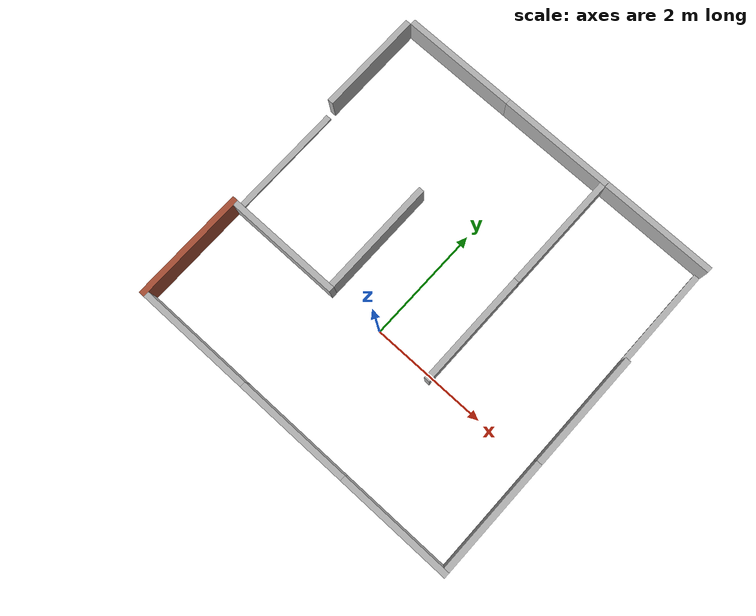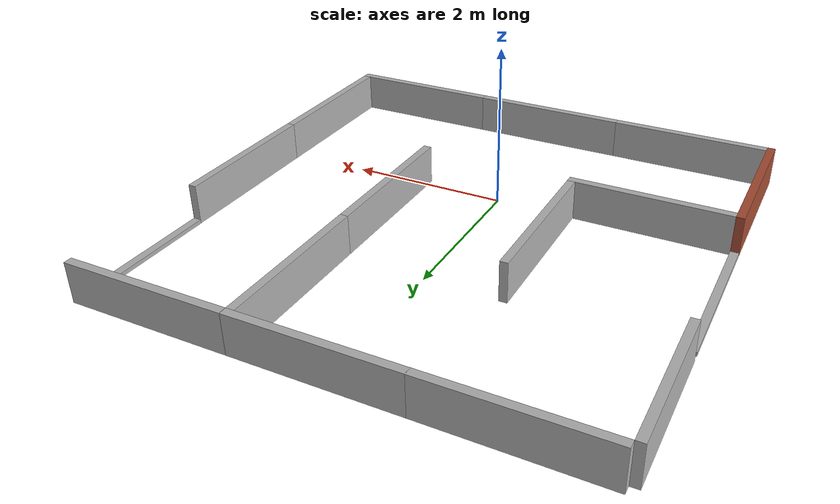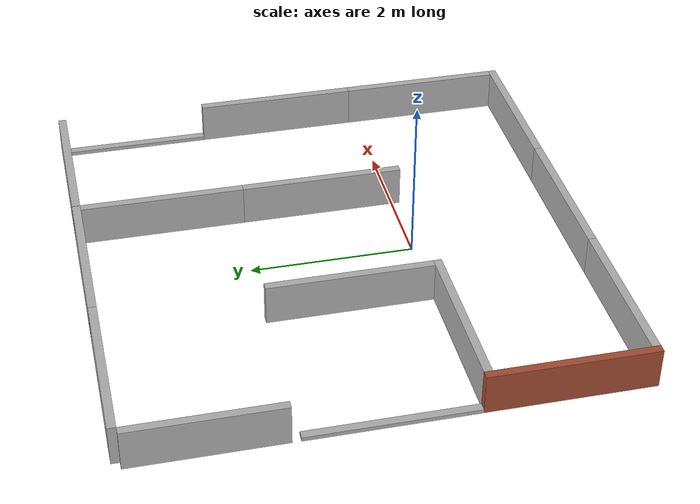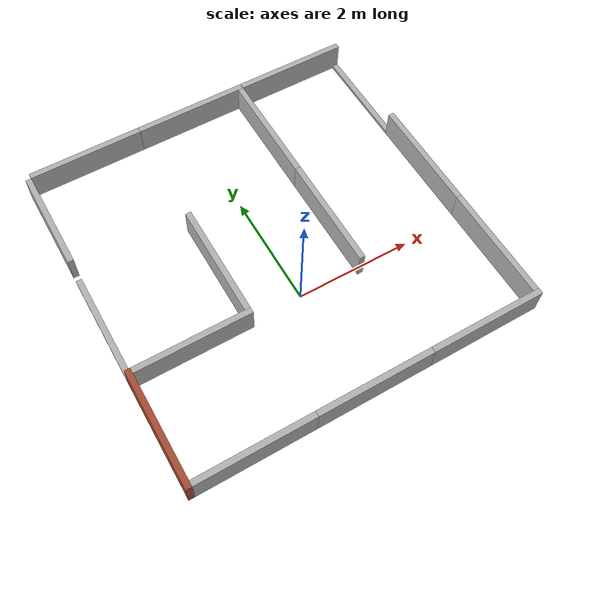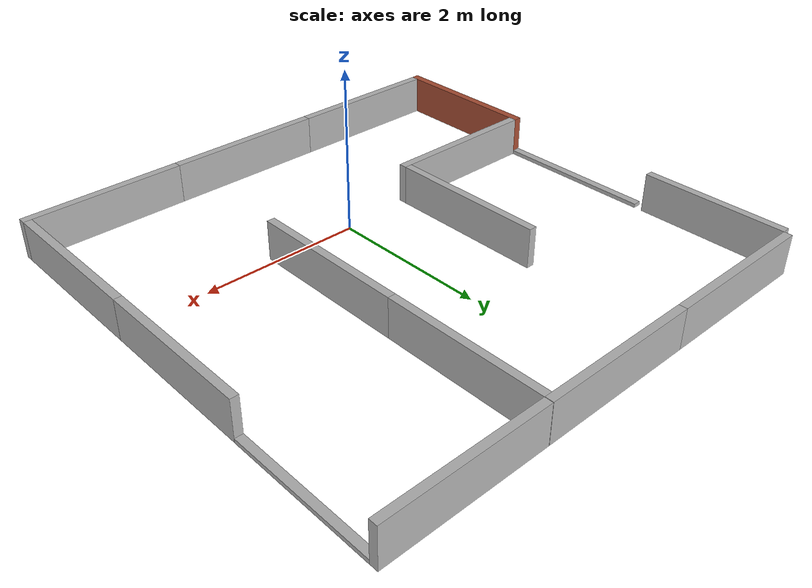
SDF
<?xml version="1.0" ?>
<sdf version="1.7">

    <world name="Empty_world">
        <physics name="1ms" type="ignored">
            <max_step_size>0.001</max_step_size>
            <real_time_factor>1.0</real_time_factor>
        </physics>
        <plugin
            filename="libignition-gazebo-physics-system.so"
            name="ignition::gazebo::systems::Physics">
        </plugin>
        <plugin
            filename="libignition-gazebo-user-commands-system.so"
            name="ignition::gazebo::systems::UserCommands">
        </plugin>
        <plugin
            filename="libignition-gazebo-scene-broadcaster-system.so"
            name="ignition::gazebo::systems::SceneBroadcaster">
        </plugin>

        <gui fullscreen="0">

            <!-- 3D scene -->
            <plugin filename="GzScene3D" name="3D View">
                <ignition-gui>
                <title>3D View</title>
                <property type="bool" key="showTitleBar">false</property>
                <property type="string" key="state">docked</property>
                </ignition-gui>

                <engine>ogre2</engine>
                <scene>scene</scene>
                <ambient_light>0.4 0.4 0.4</ambient_light>
                <background_color>0.8 0.8 0.8</background_color>
            </plugin>

            <!-- World control -->
            <plugin filename="WorldControl" name="World control">
                <ignition-gui>
                <title>World control</title>
                <property type="bool" key="showTitleBar">false</property>
                <property type="bool" key="resizable">false</property>
                <property type="double" key="height">72</property>
                <property type="double" key="width">121</property>
                <property type="double" key="z">1</property>

                <property type="string" key="state">floating</property>
                <anchors target="3D View">
                    <line own="left" target="left"/>
                    <line own="bottom" target="bottom"/>
                </anchors>
                </ignition-gui>

                <play_pause>true</play_pause>
                <step>true</step>
                <start_paused>true</start_paused>
                <service>/world/Moving_robot/control</service>
                <stats_topic>/world/Moving_robot/stats</stats_topic>
            </plugin>

            <!-- World statistics -->
            <plugin filename="WorldStats" name="World stats">
                <ignition-gui>
                <title>World stats</title>
                <property type="bool" key="showTitleBar">false</property>
                <property type="bool" key="resizable">false</property>
                <property type="double" key="height">110</property>
                <property type="double" key="width">290</property>
                <property type="double" key="z">1</property>

                <property type="string" key="state">floating</property>
                <anchors target="3D View">
                    <line own="right" target="right"/>
                    <line own="bottom" target="bottom"/>
                </anchors>
                </ignition-gui>

                <sim_time>true</sim_time>
                <real_time>true</real_time>
                <real_time_factor>true</real_time_factor>
                <iterations>true</iterations>
                <topic>/world/Moving_robot/stats</topic>

            </plugin>

            <!-- Entity tree -->
            <plugin filename="EntityTree" name="Entity tree">
            </plugin>

            <!-- Entity tree -->
            <plugin filename="ComponentInspector" name="Component inspector">
            </plugin>

            <!-- KeyPublisher plugin-->
            <plugin filename="KeyPublisher" name="Key publisher"/>

            <plugin filename="ImageDisplay" name="Image display"/>

        </gui>

        <model name='minimaze'>
            <link name='link_0'>
                <inertial>
                    <mass>1</mass>
                    <inertia>
                        <ixx>0.166667</ixx>
                        <ixy>0</ixy>
                        <ixz>0</ixz>
                        <iyy>0.166667</iyy>
                        <iyz>0</iyz>
                        <izz>0.166667</izz>
                    </inertia>
                    <pose>0 0 0 0 -0 0</pose>
                </inertial>
                <pose>-2.95321 -1.925 0 0 -0 0</pose>
                <gravity>1</gravity>
                <self_collide>0</self_collide>
                <kinematic>0</kinematic>
                <enable_wind>0</enable_wind>
                <visual name='visual'>
                    <pose>0 0 0 0 -0 0</pose>
                    <geometry>
                        <mesh>
                            <uri>file://src/robotont_gazebo/meshes/bricks_test.dae</uri>
                            <scale>1 1 1</scale>
                        </mesh>
                    </geometry>
                    <material>
                        <lighting>1</lighting>
                        <script>
                        <uri>file://src/robotont_gazebo/media/materials/scripts/WhiteBricks.material</uri>
                        <name>RoboTont/WhiteBricks</name>
                        </script>
                        <shader type='vertex'>
                        <normal_map>__default__</normal_map>
                        </shader>
                        <ambient>0.3 0.3 0.3 1</ambient>
                        <diffuse>0.7 0.7 0.7 1</diffuse>
                        <specular>0.01 0.01 0.01 1</specular>
                        <emissive>0.5 0.5 0.5 1</emissive>
                    </material>
                    <transparency>0</transparency>
                    <cast_shadows>1</cast_shadows>
                </visual>
                <collision name='collision'>
                    <laser_retro>0</laser_retro>
                    <max_contacts>10</max_contacts>
                    <pose>0 0 0 0 -0 0</pose>
                    <geometry>
                        <mesh>
                        <uri>file://src/robotont_gazebo/meshes/bricks_test.dae</uri>
                        <scale>1 1 1</scale>
                        </mesh>
                    </geometry>
                    <surface>
                        <friction>
                        <ode>
                            <mu>1</mu>
                            <mu2>1</mu2>
                            <fdir1>0 0 0</fdir1>
                            <slip1>0</slip1>
                            <slip2>0</slip2>
                        </ode>
                        <torsional>
                            <coefficient>1</coefficient>
                            <patch_radius>0</patch_radius>
                            <surface_radius>0</surface_radius>
                            <use_patch_radius>1</use_patch_radius>
                            <ode>
                            <slip>0</slip>
                            </ode>
                        </torsional>
                        </friction>
                        <bounce>
                        <restitution_coefficient>0</restitution_coefficient>
                        <threshold>1e+06</threshold>
                        </bounce>
                        <contact>
                        <collide_without_contact>0</collide_without_contact>
                        <collide_without_contact_bitmask>1</collide_without_contact_bitmask>
                        <collide_bitmask>1</collide_bitmask>
                        <ode>
                            <soft_cfm>0</soft_cfm>
                            <soft_erp>0.2</soft_erp>
                            <kp>1e+13</kp>
                            <kd>1</kd>
                            <max_vel>0.01</max_vel>
                            <min_depth>0</min_depth>
                        </ode>
                        <bullet>
                            <split_impulse>1</split_impulse>
                            <split_impulse_penetration_threshold>-0.01</split_impulse_penetration_threshold>
                            <soft_cfm>0</soft_cfm>
                            <soft_erp>0.2</soft_erp>
                            <kp>1e+13</kp>
                            <kd>1</kd>
                        </bullet>
                        </contact>
                    </surface>
                </collision>
            </link>
            <link name='link_0_0'>
                <inertial>
                <mass>0.00194483</mass>
                <inertia>
                    <ixx>0.00047544</ixx>
                    <ixy>0</ixy>
                    <ixz>0</ixz>
                    <iyy>4.8e-07</iyy>
                    <iyz>0</iyz>
                    <izz>0.00047572</izz>
                </inertia>
                <pose>0 0 0 0 -0 0</pose>
                </inertial>
                <pose>-2.95321 0.074599 -0.227011 -3.8e-05 -1e-05 0</pose>
                <gravity>1</gravity>
                <self_collide>0</self_collide>
                <kinematic>0</kinematic>
                <enable_wind>0</enable_wind>
                <visual name='visual'>
                <pose>0 0 0 0 -0 0</pose>
                <geometry>
                    <box>
                    <size>0.1 2 0.05</size>
                    </box>
                </geometry>
                <material>
                    <lighting>1</lighting>
                    <shader type='vertex'>
                    <normal_map>__default__</normal_map>
                    </shader>
                    <ambient>0.3 0.3 0.3 1</ambient>
                    <diffuse>0.7 0.7 0.7 1</diffuse>
                    <specular>0.01 0.01 0.01 1</specular>
                    <emissive>0.4 0.4 0.4 1</emissive>
                </material>
                <transparency>0</transparency>
                <cast_shadows>1</cast_shadows>
                </visual>
                <collision name='collision'>
                <laser_retro>0</laser_retro>
                <max_contacts>10</max_contacts>
                <pose>0 0 0 0 -0 0</pose>
                <geometry>
                    <box>
                    <size>0.099999 2 0.05</size>
                    </box>
                </geometry>
                <surface>
                    <friction>
                    <ode>
                        <mu>1</mu>
                        <mu2>1</mu2>
                        <fdir1>0 0 0</fdir1>
                        <slip1>0</slip1>
                        <slip2>0</slip2>
                    </ode>
                    <torsional>
                        <coefficient>1</coefficient>
                        <patch_radius>0</patch_radius>
                        <surface_radius>0</surface_radius>
                        <use_patch_radius>1</use_patch_radius>
                        <ode>
                        <slip>0</slip>
                        </ode>
                    </torsional>
                    </friction>
                    <bounce>
                    <restitution_coefficient>0</restitution_coefficient>
                    <threshold>1e+06</threshold>
                    </bounce>
                    <contact>
                    <collide_without_contact>0</collide_without_contact>
                    <collide_without_contact_bitmask>1</collide_without_contact_bitmask>
                    <collide_bitmask>1</collide_bitmask>
                    <ode>
                        <soft_cfm>0</soft_cfm>
                        <soft_erp>0.2</soft_erp>
                        <kp>1e+13</kp>
                        <kd>1</kd>
                        <max_vel>0.01</max_vel>
                        <min_depth>0</min_depth>
                    </ode>
                    <bullet>
                        <split_impulse>1</split_impulse>
                        <split_impulse_penetration_threshold>-0.01</split_impulse_penetration_threshold>
                        <soft_cfm>0</soft_cfm>
                        <soft_erp>0.2</soft_erp>
                        <kp>1e+13</kp>
                        <kd>1</kd>
                    </bullet>
                    </contact>
                </surface>
                </collision>
            </link>
            <link name='link_0_0_clone'>
                <inertial>
                <mass>0.00177554</mass>
                <inertia>
                    <ixx>0.00049366</ixx>
                    <ixy>0</ixy>
                    <ixz>0</ixz>
                    <iyy>3.8e-07</iyy>
                    <iyz>0</iyz>
                    <izz>0.00049331</izz>
                </inertia>
                <pose>0 0 0 0 -0 0</pose>
                </inertial>
                <pose>3.046790 2.07373 -0.227011 -7.6e-05 -2e-05 -0</pose>
                <gravity>1</gravity>
                <self_collide>0</self_collide>
                <kinematic>0</kinematic>
                <enable_wind>0</enable_wind>
                <visual name='visual_0'>
                <pose>0 0 0 0 -0 0</pose>
                <geometry>
                    <box>
                    <size>0.1 1.801 0.05</size>
                    </box>
                </geometry>
                <material>
                    <lighting>1</lighting>
                    <shader type='vertex'>
                    <normal_map>__default__</normal_map>
                    </shader>
                    <ambient>0.3 0.3 0.3 1</ambient>
                    <diffuse>0.7 0.7 0.7 1</diffuse>
                    <specular>0.01 0.01 0.01 1</specular>
                    <emissive>0.4 0.4 0.4 1</emissive>
                </material>
                <transparency>0</transparency>
                <cast_shadows>1</cast_shadows>
                </visual>
                <collision name='collision'>
                <laser_retro>0</laser_retro>
                <max_contacts>10</max_contacts>
                <pose>0 0 0 0 -0 0</pose>
                <geometry>
                    <box>
                    <size>0.1 1.801 0.05</size>
                    </box>
                </geometry>
                <surface>
                    <friction>
                    <ode>
                        <mu>1</mu>
                        <mu2>1</mu2>
                        <fdir1>0 0 0</fdir1>
                        <slip1>0</slip1>
                        <slip2>0</slip2>
                        </ode>
                    <torsional>
                        <coefficient>1</coefficient>
                        <patch_radius>0</patch_radius>
                        <surface_radius>0</surface_radius>
                        <use_patch_radius>1</use_patch_radius>
                        <ode>
                        <slip>0</slip>
                        </ode>
                    </torsional>
                    </friction>
                    <bounce>
                    <restitution_coefficient>0</restitution_coefficient>
                    <threshold>1e+06</threshold>
                    </bounce>
                    <contact>
                    <collide_without_contact>0</collide_without_contact>
                    <collide_without_contact_bitmask>1</collide_without_contact_bitmask>
                    <collide_bitmask>1</collide_bitmask>
                    <ode>
                        <soft_cfm>0</soft_cfm>
                        <soft_erp>0.2</soft_erp>
                        <kp>1e+13</kp>
                        <kd>1</kd>
                        <max_vel>0.01</max_vel>
                        <min_depth>0</min_depth>
                    </ode>
                    <bullet>
                        <split_impulse>1</split_impulse>
                        <split_impulse_penetration_threshold>-0.01</split_impulse_penetration_threshold>
                        <soft_cfm>0</soft_cfm>
                        <soft_erp>0.2</soft_erp>
                        <kp>1e+13</kp>
                        <kd>1</kd>
                    </bullet>
                    </contact>
                </surface>
                </collision>
            </link>
            <link name='link_0_clone'>
                <inertial>
                <mass>1</mass>
                <inertia>
                    <ixx>0.166667</ixx>
                    <ixy>0</ixy>
                    <ixz>0</ixz>
                    <iyy>0.166667</iyy>
                    <iyz>0</iyz>
                    <izz>0.166667</izz>
                </inertia>
                <pose>0 0 0 0 -0 0</pose>
                </inertial>
                <pose>-2.95321 2.075 0 0 -0 0</pose>
                <gravity>1</gravity>
                <self_collide>0</self_collide>
                <kinematic>0</kinematic>
                <enable_wind>0</enable_wind>
                <visual name='visual'>
                <pose>0 0 0 0 -0 0</pose>
                <geometry>
                    <box>
                    <size>0.1 1.801 0.5</size>
                    </box>
                </geometry>
                <material>
                    <lighting>1</lighting>
                    <shader type='vertex'>
                    <normal_map>__default__</normal_map>
                    </shader>
                    <ambient>0.3 0.3 0.3 1</ambient>
                    <diffuse>0.7 0.7 0.7 1</diffuse>
                    <specular>0.01 0.01 0.01 1</specular>
                    <emissive>0.5 0.5 0.5 1</emissive>
                </material>
                <transparency>0</transparency>
                <cast_shadows>1</cast_shadows>
                </visual>
                <collision name='collision'>
                <laser_retro>0</laser_retro>
                <max_contacts>10</max_contacts>
                <pose>0 0 0 0 -0 0</pose>
                <geometry>
                    <mesh>
                    <uri>file://src/robotont_gazebo/meshes/bricks_test.dae</uri>
                    <scale>1 1 1</scale>
                    </mesh>
                </geometry>
                <surface>
                    <friction>
                    <ode>
                        <mu>1</mu>
                        <mu2>1</mu2>
                        <fdir1>0 0 0</fdir1>
                        <slip1>0</slip1>
                        <slip2>0</slip2>
                    </ode>
                    <torsional>
                        <coefficient>1</coefficient>
                        <patch_radius>0</patch_radius>
                        <surface_radius>0</surface_radius>
                        <use_patch_radius>1</use_patch_radius>
                        <ode>
                        <slip>0</slip>
                        </ode>
                    </torsional>
                    </friction>
                    <bounce>
                    <restitution_coefficient>0</restitution_coefficient>
                    <threshold>1e+06</threshold>
                    </bounce>
                    <contact>
                    <collide_without_contact>0</collide_without_contact>
                    <collide_without_contact_bitmask>1</collide_without_contact_bitmask>
                    <collide_bitmask>1</collide_bitmask>
                    <ode>
                        <soft_cfm>0</soft_cfm>
                        <soft_erp>0.2</soft_erp>
                        <kp>1e+13</kp>
                        <kd>1</kd>
                        <max_vel>0.01</max_vel>
                        <min_depth>0</min_depth>
                    </ode>
                    <bullet>
                        <split_impulse>1</split_impulse>
                        <split_impulse_penetration_threshold>-0.01</split_impulse_penetration_threshold>
                        <soft_cfm>0</soft_cfm>
                        <soft_erp>0.2</soft_erp>
                        <kp>1e+13</kp>
                        <kd>1</kd>
                    </bullet>
                    </contact>
                </surface>
                </collision>
            </link>
            <link name='link_0_clone_0'>
                <inertial>
                <mass>1</mass>
                <inertia>
                    <ixx>0.166667</ixx>
                    <ixy>0</ixy>
                    <ixz>0</ixz>
                    <iyy>0.166667</iyy>
                    <iyz>0</iyz>
                    <izz>0.166667</izz>
                </inertia>
                <pose>0 0 0 0 -0 0</pose>
                </inertial>
                <pose>3.04679 -1.825 -0 0 -0 0</pose>
                <gravity>1</gravity>
                <self_collide>0</self_collide>
                <kinematic>0</kinematic>
                <enable_wind>0</enable_wind>
                <visual name='visual'>
                <pose>0 0 0 0 -0 0</pose>
                <geometry>
                    <mesh>
                    <uri>file://src/robotont_gazebo/meshes/bricks_test.dae</uri>
                    <scale>1 1 1</scale>
                    </mesh>
                </geometry>
                <material>
                    <lighting>1</lighting>
                    <shader type='vertex'>
                    <normal_map>__default__</normal_map>
                    </shader>
                    <ambient>0.3 0.3 0.3 1</ambient>
                    <diffuse>0.7 0.7 0.7 1</diffuse>
                    <specular>0.01 0.01 0.01 1</specular>
                    <emissive>0.5 0.5 0.5 1</emissive>
                </material>
                <transparency>0</transparency>
                <cast_shadows>1</cast_shadows>
                </visual>
                <collision name='collision'>
                <laser_retro>0</laser_retro>
                <max_contacts>10</max_contacts>
                <pose>0 0 0 0 -0 0</pose>
                <geometry>
                    <mesh>
                    <uri>file://src/robotont_gazebo/meshes/bricks_test.dae</uri>
                    <scale>1 1 1</scale>
                    </mesh>
                </geometry>
                <surface>
                    <friction>
                    <ode>
                        <mu>1</mu>
                        <mu2>1</mu2>
                        <fdir1>0 0 0</fdir1>
                        <slip1>0</slip1>
                        <slip2>0</slip2>
                    </ode>
                    <torsional>
                        <coefficient>1</coefficient>
                        <patch_radius>0</patch_radius>
                        <surface_radius>0</surface_radius>
                        <use_patch_radius>1</use_patch_radius>
                        <ode>
                        <slip>0</slip>
                        </ode>
                    </torsional>
                    </friction>
                    <bounce>
                    <restitution_coefficient>0</restitution_coefficient>
                    <threshold>1e+06</threshold>
                    </bounce>
                    <contact>
                    <collide_without_contact>0</collide_without_contact>
                    <collide_without_contact_bitmask>1</collide_without_contact_bitmask>
                    <collide_bitmask>1</collide_bitmask>
                    <ode>
                        <soft_cfm>0</soft_cfm>
                        <soft_erp>0.2</soft_erp>
                        <kp>1e+13</kp>
                        <kd>1</kd>
                        <max_vel>0.01</max_vel>
                        <min_depth>0</min_depth>
                    </ode>
                    <bullet>
                        <split_impulse>1</split_impulse>
                        <split_impulse_penetration_threshold>-0.01</split_impulse_penetration_threshold>
                        <soft_cfm>0</soft_cfm>
                        <soft_erp>0.2</soft_erp>
                        <kp>1e+13</kp>
                        <kd>1</kd>
                    </bullet>
                    </contact>
                </surface>
                </collision>
            </link>
            <link name='link_0_clone_1'>
                <inertial>
                <mass>1</mass>
                <inertia>
                    <ixx>0.166667</ixx>
                    <ixy>0</ixy>
                    <ixz>0</ixz>
                    <iyy>0.166667</iyy>
                    <iyz>0</iyz>
                    <izz>0.166667</izz>
                </inertia>
                <pose>0 0 0 0 -0 0</pose>
                </inertial>
                <pose>3.04679 0.175 0 0 -0 0</pose>
                <gravity>1</gravity>
                <self_collide>0</self_collide>
                <kinematic>0</kinematic>
                <enable_wind>0</enable_wind>
                <visual name='visual'>
                <pose>0 0 0 0 -0 0</pose>
                <geometry>
                    <mesh>
                    <uri>file://src/robotont_gazebo/meshes/bricks_test.dae</uri>
                    <scale>1 1 1</scale>
                    </mesh>
                </geometry>
                <material>
                    <lighting>1</lighting>
                    <shader type='vertex'>
                    <normal_map>__default__</normal_map>
                    </shader>
                    <ambient>0.3 0.3 0.3 1</ambient>
                    <diffuse>0.7 0.7 0.7 1</diffuse>
                    <specular>0.01 0.01 0.01 1</specular>
                    <emissive>0.5 0.5 0.5 1</emissive>
                </material>
                <transparency>0</transparency>
                <cast_shadows>1</cast_shadows>
                </visual>
                <collision name='collision'>
                <laser_retro>0</laser_retro>
                <max_contacts>10</max_contacts>
                <pose>0 0 0 0 -0 0</pose>
                <geometry>
                    <mesh>
                    <uri>file://src/robotont_gazebo/meshes/bricks_test.dae</uri>
                    <scale>1 1 1</scale>
                    </mesh>
                </geometry>
                <surface>
                    <friction>
                    <ode>
                        <mu>1</mu>
                        <mu2>1</mu2>
                        <fdir1>0 0 0</fdir1>
                        <slip1>0</slip1>
                        <slip2>0</slip2>
                    </ode>
                    <torsional>
                        <coefficient>1</coefficient>
                        <patch_radius>0</patch_radius>
                        <surface_radius>0</surface_radius>
                        <use_patch_radius>1</use_patch_radius>
                        <ode>
                        <slip>0</slip>
                        </ode>
                    </torsional>
                    </friction>
                    <bounce>
                    <restitution_coefficient>0</restitution_coefficient>
                    <threshold>1e+06</threshold>
                    </bounce>
                    <contact>
                    <collide_without_contact>0</collide_without_contact>
                    <collide_without_contact_bitmask>1</collide_without_contact_bitmask>
                    <collide_bitmask>1</collide_bitmask>
                    <ode>
                        <soft_cfm>0</soft_cfm>
                        <soft_erp>0.2</soft_erp>
                        <kp>1e+13</kp>
                        <kd>1</kd>
                        <max_vel>0.01</max_vel>
                        <min_depth>0</min_depth>
                    </ode>
                    <bullet>
                        <split_impulse>1</split_impulse>
                        <split_impulse_penetration_threshold>-0.01</split_impulse_penetration_threshold>
                        <soft_cfm>0</soft_cfm>
                        <soft_erp>0.2</soft_erp>
                        <kp>1e+13</kp>
                        <kd>1</kd>
                    </bullet>
                    </contact>
                </surface>
                </collision>
            </link>
            <link name='link_0_clone_1_clone'>
                <inertial>
                <mass>1</mass>
                <inertia>
                    <ixx>0.166667</ixx>
                    <ixy>0</ixy>
                    <ixz>0</ixz>
                    <iyy>0.166667</iyy>
                    <iyz>0</iyz>
                    <izz>0.166667</izz>
                </inertia>
                <pose>0 0 0 0 -0 0</pose>
                </inertial>
                <pose>1.04679 1.975 -0 0 -0 0</pose>
                <gravity>1</gravity>
                <self_collide>0</self_collide>
                <kinematic>0</kinematic>
                <enable_wind>0</enable_wind>
                <visual name='visual'>
                <pose>0 0 0 0 -0 0</pose>
                <geometry>
                    <mesh>
                    <uri>file://src/robotont_gazebo/meshes/bricks_test.dae</uri>
                    <scale>1 1 1</scale>
                    </mesh>
                </geometry>
                <material>
                    <lighting>1</lighting>
                    <shader type='vertex'>
                    <normal_map>__default__</normal_map>
                    </shader>
                    <ambient>0.3 0.3 0.3 1</ambient>
                    <diffuse>0.7 0.7 0.7 1</diffuse>
                    <specular>0.01 0.01 0.01 1</specular>
                    <emissive>0.5 0.5 0.5 1</emissive>
                </material>
                <transparency>0</transparency>
                <cast_shadows>1</cast_shadows>
                </visual>
                <collision name='collision'>
                <laser_retro>0</laser_retro>
                <max_contacts>10</max_contacts>
                <pose>0 0 0 0 -0 0</pose>
                <geometry>
                    <mesh>
                    <uri>file://src/robotont_gazebo/meshes/bricks_test.dae</uri>
                    <scale>1 1 1</scale>
                    </mesh>
                </geometry>
                <surface>
                    <friction>
                    <ode>
                        <mu>1</mu>
                        <mu2>1</mu2>
                        <fdir1>0 0 0</fdir1>
                        <slip1>0</slip1>
                        <slip2>0</slip2>
                    </ode>
                    <torsional>
                        <coefficient>1</coefficient>
                        <patch_radius>0</patch_radius>
                        <surface_radius>0</surface_radius>
                        <use_patch_radius>1</use_patch_radius>
                        <ode>
                        <slip>0</slip>
                        </ode>
                    </torsional>
                    </friction>
                    <bounce>
                    <restitution_coefficient>0</restitution_coefficient>
                    <threshold>1e+06</threshold>
                    </bounce>
                    <contact>
                    <collide_without_contact>0</collide_without_contact>
                    <collide_without_contact_bitmask>1</collide_without_contact_bitmask>
                    <collide_bitmask>1</collide_bitmask>
                    <ode>
                        <soft_cfm>0</soft_cfm>
                        <soft_erp>0.2</soft_erp>
                        <kp>1e+13</kp>
                        <kd>1</kd>
                        <max_vel>0.01</max_vel>
                        <min_depth>0</min_depth>
                    </ode>
                    <bullet>
                        <split_impulse>1</split_impulse>
                        <split_impulse_penetration_threshold>-0.01</split_impulse_penetration_threshold>
                        <soft_cfm>0</soft_cfm>
                        <soft_erp>0.2</soft_erp>
                        <kp>1e+13</kp>
                        <kd>1</kd>
                    </bullet>
                    </contact>
                </surface>
                </collision>
            </link>
            <link name='link_0_clone_1_clone_0'>
                <inertial>
                <mass>1</mass>
                <inertia>
                    <ixx>0.166667</ixx>
                    <ixy>0</ixy>
                    <ixz>0</ixz>
                    <iyy>0.166667</iyy>
                    <iyz>0</iyz>
                    <izz>0.166667</izz>
                </inertia>
                <pose>0 0 0 0 -0 0</pose>
                </inertial>
                <pose>1.04679 -0.025 0 0 -0 0</pose>
                <gravity>1</gravity>
                <self_collide>0</self_collide>
                <kinematic>0</kinematic>
                <enable_wind>0</enable_wind>
                <visual name='visual'>
                <pose>0 0 0 0 -0 0</pose>
                <geometry>
                    <mesh>
                    <uri>file://src/robotont_gazebo/meshes/bricks_test.dae</uri>
                    <scale>1 1 1</scale>
                    </mesh>
                </geometry>
                <material>
                    <lighting>1</lighting>
                    <shader type='vertex'>
                    <normal_map>__default__</normal_map>
                    </shader>
                    <ambient>0.3 0.3 0.3 1</ambient>
                    <diffuse>0.7 0.7 0.7 1</diffuse>
                    <specular>0.01 0.01 0.01 1</specular>
                    <emissive>0.5 0.5 0.5 1</emissive>
                </material>
                <transparency>0</transparency>
                <cast_shadows>1</cast_shadows>
                </visual>
                <collision name='collision'>
                <laser_retro>0</laser_retro>
                <max_contacts>10</max_contacts>
                <pose>0 0 0 0 -0 0</pose>
                <geometry>
                    <mesh>
                    <uri>file://src/robotont_gazebo/meshes/bricks_test.dae</uri>
                    <scale>1 1 1</scale>
                    </mesh>
                </geometry>
                <surface>
                    <friction>
                    <ode>
                        <mu>1</mu>
                        <mu2>1</mu2>
                        <fdir1>0 0 0</fdir1>
                        <slip1>0</slip1>
                        <slip2>0</slip2>
                    </ode>
                    <torsional>
                        <coefficient>1</coefficient>
                        <patch_radius>0</patch_radius>
                        <surface_radius>0</surface_radius>
                        <use_patch_radius>1</use_patch_radius>
                        <ode>
                        <slip>0</slip>
                        </ode>
                    </torsional>
                    </friction>
                    <bounce>
                    <restitution_coefficient>0</restitution_coefficient>
                    <threshold>1e+06</threshold>
                    </bounce>
                    <contact>
                    <collide_without_contact>0</collide_without_contact>
                    <collide_without_contact_bitmask>1</collide_without_contact_bitmask>
                    <collide_bitmask>1</collide_bitmask>
                    <ode>
                        <soft_cfm>0</soft_cfm>
                        <soft_erp>0.2</soft_erp>
                        <kp>1e+13</kp>
                        <kd>1</kd>
                        <max_vel>0.01</max_vel>
                        <min_depth>0</min_depth>
                    </ode>
                    <bullet>
                        <split_impulse>1</split_impulse>
                        <split_impulse_penetration_threshold>-0.01</split_impulse_penetration_threshold>
                        <soft_cfm>0</soft_cfm>
                        <soft_erp>0.2</soft_erp>
                        <kp>1e+13</kp>
                        <kd>1</kd>
                    </bullet>
                    </contact>
                </surface>
                </collision>
            </link>
            <link name='link_0_clone_1_clone_1'>
                <inertial>
                <mass>1</mass>
                <inertia>
                    <ixx>0.166667</ixx>
                    <ixy>0</ixy>
                    <ixz>0</ixz>
                    <iyy>0.166667</iyy>
                    <iyz>0</iyz>
                    <izz>0.166667</izz>
                </inertia>
                <pose>0 0 0 0 -0 0</pose>
                </inertial>
                <pose>-0.953214 0.075 -0 0 -0 0</pose>
                <gravity>1</gravity>
                <self_collide>0</self_collide>
                <kinematic>0</kinematic>
                <enable_wind>0</enable_wind>
                <visual name='visual'>
                <pose>0 0 0 0 -0 0</pose>
                <geometry>
                    <mesh>
                    <uri>file://src/robotont_gazebo/meshes/bricks_test.dae</uri>
                    <scale>1 1 1</scale>
                    </mesh>
                </geometry>
                <material>
                    <lighting>1</lighting>
                    <shader type='vertex'>
                    <normal_map>__default__</normal_map>
                    </shader>
                    <ambient>0.3 0.3 0.3 1</ambient>
                    <diffuse>0.7 0.7 0.7 1</diffuse>
                    <specular>0.01 0.01 0.01 1</specular>
                    <emissive>0.5 0.5 0.5 1</emissive>
                </material>
                <transparency>0</transparency>
                <cast_shadows>1</cast_shadows>
                </visual>
                <collision name='collision'>
                <laser_retro>0</laser_retro>
                <max_contacts>10</max_contacts>
                <pose>0 0 0 0 -0 0</pose>
                <geometry>
                    <mesh>
                    <uri>file://src/robotont_gazebo/meshes/bricks_test.dae</uri>
                    <scale>1 1 1</scale>
                    </mesh>
                </geometry>
                <surface>
                    <friction>
                    <ode>
                        <mu>1</mu>
                        <mu2>1</mu2>
                        <fdir1>0 0 0</fdir1>
                        <slip1>0</slip1>
                        <slip2>0</slip2>
                    </ode>
                    <torsional>
                        <coefficient>1</coefficient>
                        <patch_radius>0</patch_radius>
                        <surface_radius>0</surface_radius>
                        <use_patch_radius>1</use_patch_radius>
                        <ode>
                        <slip>0</slip>
                        </ode>
                    </torsional>
                    </friction>
                    <bounce>
                    <restitution_coefficient>0</restitution_coefficient>
                    <threshold>1e+06</threshold>
                    </bounce>
                    <contact>
                    <collide_without_contact>0</collide_without_contact>
                    <collide_without_contact_bitmask>1</collide_without_contact_bitmask>
                    <collide_bitmask>1</collide_bitmask>
                    <ode>
                        <soft_cfm>0</soft_cfm>
                        <soft_erp>0.2</soft_erp>
                        <kp>1e+13</kp>
                        <kd>1</kd>
                        <max_vel>0.01</max_vel>
                        <min_depth>0</min_depth>
                    </ode>
                    <bullet>
                        <split_impulse>1</split_impulse>
                        <split_impulse_penetration_threshold>-0.01</split_impulse_penetration_threshold>
                        <soft_cfm>0</soft_cfm>
                        <soft_erp>0.2</soft_erp>
                        <kp>1e+13</kp>
                        <kd>1</kd>
                    </bullet>
                    </contact>
                </surface>
                </collision>
            </link>
            <link name='link_1'>
                <inertial>
                <mass>1</mass>
                <inertia>
                    <ixx>0.166667</ixx>
                    <ixy>0</ixy>
                    <ixz>0</ixz>
                    <iyy>0.166667</iyy>
                    <iyz>0</iyz>
                    <izz>0.166667</izz>
                </inertia>
                <pose>0 0 0 0 -0 0</pose>
                </inertial>
                <pose>-1.90321 -0.975 0 0 -0 0</pose>
                <gravity>1</gravity>
                <self_collide>0</self_collide>
                <kinematic>0</kinematic>
                <enable_wind>0</enable_wind>
                <visual name='visual'>
                <pose>0 0 0 0 -0 0</pose>
                <geometry>
                    <mesh>
                    <uri>file://src/robotont_gazebo/meshes/bricks2_test.dae</uri>
                    <scale>1 1 1</scale>
                    </mesh>
                </geometry>
                <material>
                    <lighting>1</lighting>
                    <shader type='vertex'>
                    <normal_map>__default__</normal_map>
                    </shader>
                    <ambient>0.3 0.3 0.3 1</ambient>
                    <diffuse>0.7 0.7 0.7 1</diffuse>
                    <specular>0.01 0.01 0.01 1</specular>
                    <emissive>0.5 0.5 0.5 1</emissive>
                </material>
                <transparency>0</transparency>
                <cast_shadows>1</cast_shadows>
                </visual>
                <collision name='collision'>
                <laser_retro>0</laser_retro>
                <max_contacts>10</max_contacts>
                <pose>0 0 0 0 -0 0</pose>
                <geometry>
                    <mesh>
                    <uri>file://src/robotont_gazebo/meshes/bricks2_test.dae</uri>
                    <scale>1 1 1</scale>
                    </mesh>
                </geometry>
                <surface>
                    <friction>
                    <ode>
                        <mu>1</mu>
                        <mu2>1</mu2>
                        <fdir1>0 0 0</fdir1>
                        <slip1>0</slip1>
                        <slip2>0</slip2>
                    </ode>
                    <torsional>
                        <coefficient>1</coefficient>
                        <patch_radius>0</patch_radius>
                        <surface_radius>0</surface_radius>
                        <use_patch_radius>1</use_patch_radius>
                        <ode>
                        <slip>0</slip>
                        </ode>
                    </torsional>
                    </friction>
                    <bounce>
                    <restitution_coefficient>0</restitution_coefficient>
                    <threshold>1e+06</threshold>
                    </bounce>
                    <contact>
                    <collide_without_contact>0</collide_without_contact>
                    <collide_without_contact_bitmask>1</collide_without_contact_bitmask>
                    <collide_bitmask>1</collide_bitmask>
                    <ode>
                        <soft_cfm>0</soft_cfm>
                        <soft_erp>0.2</soft_erp>
                        <kp>1e+13</kp>
                        <kd>1</kd>
                        <max_vel>0.01</max_vel>
                        <min_depth>0</min_depth>
                    </ode>
                    <bullet>
                        <split_impulse>1</split_impulse>
                        <split_impulse_penetration_threshold>-0.01</split_impulse_penetration_threshold>
                        <soft_cfm>0</soft_cfm>
                        <soft_erp>0.2</soft_erp>
                        <kp>1e+13</kp>
                        <kd>1</kd>
                    </bullet>
                    </contact>
                </surface>
                </collision>
            </link>
            <link name='link_1_clone'>
                <inertial>
                <mass>1</mass>
                <inertia>
                    <ixx>0.166667</ixx>
                    <ixy>0</ixy>
                    <ixz>0</ixz>
                    <iyy>0.166667</iyy>
                    <iyz>0</iyz>
                    <izz>0.166667</izz>
                </inertia>
                <pose>0 0 0 0 -0 0</pose>
                </inertial>
                <pose>-1.90321 -2.875 0 0 -0 0</pose>
                <gravity>1</gravity>
                <self_collide>0</self_collide>
                <kinematic>0</kinematic>
                <enable_wind>0</enable_wind>
                <visual name='visual'>
                <pose>0 0 0 0 -0 0</pose>
                <geometry>
                    <mesh>
                    <uri>file://src/robotont_gazebo/meshes/bricks2_test.dae</uri>
                    <scale>1 1 1</scale>
                    </mesh>
                </geometry>
                <material>
                    <lighting>1</lighting>
                    <shader type='vertex'>
                    <normal_map>__default__</normal_map>
                    </shader>
                    <ambient>0.3 0.3 0.3 1</ambient>
                    <diffuse>0.7 0.7 0.7 1</diffuse>
                    <specular>0.01 0.01 0.01 1</specular>
                    <emissive>0.5 0.5 0.5 1</emissive>
                </material>
                <transparency>0</transparency>
                <cast_shadows>1</cast_shadows>
                </visual>
                <collision name='collision'>
                <laser_retro>0</laser_retro>
                <max_contacts>10</max_contacts>
                <pose>0 0 0 0 -0 0</pose>
                <geometry>
                    <mesh>
                    <uri>file://src/robotont_gazebo/meshes/bricks2_test.dae</uri>
                    <scale>1 1 1</scale>
                    </mesh>
                </geometry>
                <surface>
                    <friction>
                    <ode>
                        <mu>1</mu>
                        <mu2>1</mu2>
                        <fdir1>0 0 0</fdir1>
                        <slip1>0</slip1>
                        <slip2>0</slip2>
                    </ode>
                    <torsional>
                        <coefficient>1</coefficient>
                        <patch_radius>0</patch_radius>
                        <surface_radius>0</surface_radius>
                        <use_patch_radius>1</use_patch_radius>
                        <ode>
                        <slip>0</slip>
                        </ode>
                    </torsional>
                    </friction>
                    <bounce>
                    <restitution_coefficient>0</restitution_coefficient>
                    <threshold>1e+06</threshold>
                    </bounce>
                    <contact>
                    <collide_without_contact>0</collide_without_contact>
                    <collide_without_contact_bitmask>1</collide_without_contact_bitmask>
                    <collide_bitmask>1</collide_bitmask>
                    <ode>
                        <soft_cfm>0</soft_cfm>
                        <soft_erp>0.2</soft_erp>
                        <kp>1e+13</kp>
                        <kd>1</kd>
                        <max_vel>0.01</max_vel>
                        <min_depth>0</min_depth>
                    </ode>
                    <bullet>
                        <split_impulse>1</split_impulse>
                        <split_impulse_penetration_threshold>-0.01</split_impulse_penetration_threshold>
                        <soft_cfm>0</soft_cfm>
                        <soft_erp>0.2</soft_erp>
                        <kp>1e+13</kp>
                        <kd>1</kd>
                    </bullet>
                    </contact>
                </surface>
                </collision>
            </link>
            <link name='link_1_clone_0'>
                <inertial>
                <mass>1</mass>
                <inertia>
                    <ixx>0.166667</ixx>
                    <ixy>0</ixy>
                    <ixz>0</ixz>
                    <iyy>0.166667</iyy>
                    <iyz>0</iyz>
                    <izz>0.166667</izz>
                </inertia>
                <pose>0 0 0 0 -0 0</pose>
                </inertial>
                <pose>0.096786 -2.875 -0 0 -0 0</pose>
                <gravity>1</gravity>
                <self_collide>0</self_collide>
                <kinematic>0</kinematic>
                <enable_wind>0</enable_wind>
                <visual name='visual'>
                <pose>0 0 0 0 -0 0</pose>
                <geometry>
                    <mesh>
                    <uri>file://src/robotont_gazebo/meshes/bricks2_test.dae</uri>
                    <scale>1 1 1</scale>
                    </mesh>
                </geometry>
                <material>
                    <lighting>1</lighting>
                    <shader type='vertex'>
                    <normal_map>__default__</normal_map>
                    </shader>
                    <ambient>0.3 0.3 0.3 1</ambient>
                    <diffuse>0.7 0.7 0.7 1</diffuse>
                    <specular>0.01 0.01 0.01 1</specular>
                    <emissive>0.5 0.5 0.5 1</emissive>
                </material>
                <transparency>0</transparency>
                <cast_shadows>1</cast_shadows>
                </visual>
                <collision name='collision'>
                <laser_retro>0</laser_retro>
                <max_contacts>10</max_contacts>
                <pose>0 0 0 0 -0 0</pose>
                <geometry>
                    <mesh>
                    <uri>file://src/robotont_gazebo/meshes/bricks2_test.dae</uri>
                    <scale>1 1 1</scale>
                    </mesh>
                </geometry>
                <surface>
                    <friction>
                    <ode>
                        <mu>1</mu>
                        <mu2>1</mu2>
                        <fdir1>0 0 0</fdir1>
                        <slip1>0</slip1>
                        <slip2>0</slip2>
                    </ode>
                    <torsional>
                        <coefficient>1</coefficient>
                        <patch_radius>0</patch_radius>
                        <surface_radius>0</surface_radius>
                        <use_patch_radius>1</use_patch_radius>
                        <ode>
                        <slip>0</slip>
                        </ode>
                    </torsional>
                    </friction>
                    <bounce>
                    <restitution_coefficient>0</restitution_coefficient>
                    <threshold>1e+06</threshold>
                    </bounce>
                    <contact>
                    <collide_without_contact>0</collide_without_contact>
                    <collide_without_contact_bitmask>1</collide_without_contact_bitmask>
                    <collide_bitmask>1</collide_bitmask>
                    <ode>
                        <soft_cfm>0</soft_cfm>
                        <soft_erp>0.2</soft_erp>
                        <kp>1e+13</kp>
                        <kd>1</kd>
                        <max_vel>0.01</max_vel>
                        <min_depth>0</min_depth>
                    </ode>
                    <bullet>
                        <split_impulse>1</split_impulse>
                        <split_impulse_penetration_threshold>-0.01</split_impulse_penetration_threshold>
                        <soft_cfm>0</soft_cfm>
                        <soft_erp>0.2</soft_erp>
                        <kp>1e+13</kp>
                        <kd>1</kd>
                    </bullet>
                    </contact>
                </surface>
                </collision>
            </link>
            <link name='link_1_clone_1'>
                <inertial>
                <mass>1</mass>
                <inertia>
                    <ixx>0.166667</ixx>
                    <ixy>0</ixy>
                    <ixz>0</ixz>
                    <iyy>0.166667</iyy>
                    <iyz>0</iyz>
                    <izz>0.166667</izz>
                </inertia>
                <pose>0 0 0 0 -0 0</pose>
                </inertial>
                <pose>2.09679 -2.875 -0 0 -0 0</pose>
                <gravity>1</gravity>
                <self_collide>0</self_collide>
                <kinematic>0</kinematic>
                <enable_wind>0</enable_wind>
                <visual name='visual'>
                <pose>0 0 0 0 -0 0</pose>
                <geometry>
                    <mesh>
                    <uri>file://src/robotont_gazebo/meshes/bricks2_test.dae</uri>
                    <scale>1 1 1</scale>
                    </mesh>
                </geometry>
                <material>
                    <lighting>1</lighting>
                    <shader type='vertex'>
                    <normal_map>__default__</normal_map>
                    </shader>
                    <ambient>0.3 0.3 0.3 1</ambient>
                    <diffuse>0.7 0.7 0.7 1</diffuse>
                    <specular>0.01 0.01 0.01 1</specular>
                    <emissive>0.5 0.5 0.5 1</emissive>
                </material>
                <transparency>0</transparency>
                <cast_shadows>1</cast_shadows>
                </visual>
                <collision name='collision'>
                <laser_retro>0</laser_retro>
                <max_contacts>10</max_contacts>
                <pose>0 0 0 0 -0 0</pose>
                <geometry>
                    <mesh>
                    <uri>file://src/robotont_gazebo/meshes/bricks2_test.dae</uri>
                    <scale>1 1 1</scale>
                    </mesh>
                </geometry>
                <surface>
                    <friction>
                    <ode>
                        <mu>1</mu>
                        <mu2>1</mu2>
                        <fdir1>0 0 0</fdir1>
                        <slip1>0</slip1>
                        <slip2>0</slip2>
                    </ode>
                    <torsional>
                        <coefficient>1</coefficient>
                        <patch_radius>0</patch_radius>
                        <surface_radius>0</surface_radius>
                        <use_patch_radius>1</use_patch_radius>
                        <ode>
                        <slip>0</slip>
                        </ode>
                    </torsional>
                    </friction>
                    <bounce>
                    <restitution_coefficient>0</restitution_coefficient>
                    <threshold>1e+06</threshold>
                    </bounce>
                    <contact>
                    <collide_without_contact>0</collide_without_contact>
                    <collide_without_contact_bitmask>1</collide_without_contact_bitmask>
                    <collide_bitmask>1</collide_bitmask>
                    <ode>
                        <soft_cfm>0</soft_cfm>
                        <soft_erp>0.2</soft_erp>
                        <kp>1e+13</kp>
                        <kd>1</kd>
                        <max_vel>0.01</max_vel>
                        <min_depth>0</min_depth>
                    </ode>
                    <bullet>
                        <split_impulse>1</split_impulse>
                        <split_impulse_penetration_threshold>-0.01</split_impulse_penetration_threshold>
                        <soft_cfm>0</soft_cfm>
                        <soft_erp>0.2</soft_erp>
                        <kp>1e+13</kp>
                        <kd>1</kd>
                    </bullet>
                    </contact>
                </surface>
                </collision>
            </link>
            <link name='link_1_clone_clone'>
                <inertial>
                <mass>1</mass>
                <inertia>
                    <ixx>0.166667</ixx>
                    <ixy>0</ixy>
                    <ixz>0</ixz>
                    <iyy>0.166667</iyy>
                    <iyz>0</iyz>
                    <izz>0.166667</izz>
                </inertia>
                <pose>0 0 0 0 -0 0</pose>
                </inertial>
                <pose>-1.90321 3.025 0 0 -0 0</pose>
                <gravity>1</gravity>
                <self_collide>0</self_collide>
                <kinematic>0</kinematic>
                <enable_wind>0</enable_wind>
                <visual name='visual'>
                <pose>0 0 0 0 -0 0</pose>
                <geometry>
                    <mesh>
                    <uri>file://src/robotont_gazebo/meshes/bricks2_test.dae</uri>
                    <scale>1 1 1</scale>
                    </mesh>
                </geometry>
                <material>
                    <lighting>1</lighting>
                    <shader type='vertex'>
                    <normal_map>__default__</normal_map>
                    </shader>
                    <ambient>0.3 0.3 0.3 1</ambient>
                    <diffuse>0.7 0.7 0.7 1</diffuse>
                    <specular>0.01 0.01 0.01 1</specular>
                    <emissive>0.5 0.5 0.5 1</emissive>
                </material>
                <transparency>0</transparency>
                <cast_shadows>1</cast_shadows>
                </visual>
                <collision name='collision'>
                <laser_retro>0</laser_retro>
                <max_contacts>10</max_contacts>
                <pose>0 0 0 0 -0 0</pose>
                <geometry>
                    <mesh>
                    <uri>file://src/robotont_gazebo/meshes/bricks2_test.dae</uri>
                    <scale>1 1 1</scale>
                    </mesh>
                </geometry>
                <surface>
                    <friction>
                    <ode>
                        <mu>1</mu>
                        <mu2>1</mu2>
                        <fdir1>0 0 0</fdir1>
                        <slip1>0</slip1>
                        <slip2>0</slip2>
                    </ode>
                    <torsional>
                        <coefficient>1</coefficient>
                        <patch_radius>0</patch_radius>
                        <surface_radius>0</surface_radius>
                        <use_patch_radius>1</use_patch_radius>
                        <ode>
                        <slip>0</slip>
                        </ode>
                    </torsional>
                    </friction>
                    <bounce>
                    <restitution_coefficient>0</restitution_coefficient>
                    <threshold>1e+06</threshold>
                    </bounce>
                    <contact>
                    <collide_without_contact>0</collide_without_contact>
                    <collide_without_contact_bitmask>1</collide_without_contact_bitmask>
                    <collide_bitmask>1</collide_bitmask>
                    <ode>
                        <soft_cfm>0</soft_cfm>
                        <soft_erp>0.2</soft_erp>
                        <kp>1e+13</kp>
                        <kd>1</kd>
                        <max_vel>0.01</max_vel>
                        <min_depth>0</min_depth>
                    </ode>
                    <bullet>
                        <split_impulse>1</split_impulse>
                        <split_impulse_penetration_threshold>-0.01</split_impulse_penetration_threshold>
                        <soft_cfm>0</soft_cfm>
                        <soft_erp>0.2</soft_erp>
                        <kp>1e+13</kp>
                        <kd>1</kd>
                    </bullet>
                    </contact>
                </surface>
                </collision>
            </link>
            <link name='link_1_clone_clone_0'>
                <inertial>
                <mass>1</mass>
                <inertia>
                    <ixx>0.166667</ixx>
                    <ixy>0</ixy>
                    <ixz>0</ixz>
                    <iyy>0.166667</iyy>
                    <iyz>0</iyz>
                    <izz>0.166667</izz>
                </inertia>
                <pose>0 0 0 0 -0 0</pose>
                </inertial>
                <pose>0.091786 3.025 -0 0 -0 0</pose>
                <gravity>1</gravity>
                <self_collide>0</self_collide>
                <kinematic>0</kinematic>
                <enable_wind>0</enable_wind>
                <visual name='visual'>
                <pose>0 0 0 0 -0 0</pose>
                <geometry>
                    <mesh>
                    <uri>file://src/robotont_gazebo/meshes/bricks2_test.dae</uri>
                    <scale>1 1 1</scale>
                    </mesh>
                </geometry>
                <material>
                    <lighting>1</lighting>
                    <shader type='vertex'>
                    <normal_map>__default__</normal_map>
                    </shader>
                    <ambient>0.3 0.3 0.3 1</ambient>
                    <diffuse>0.7 0.7 0.7 1</diffuse>
                    <specular>0.01 0.01 0.01 1</specular>
                    <emissive>0.5 0.5 0.5 1</emissive>
                </material>
                <transparency>0</transparency>
                <cast_shadows>1</cast_shadows>
                </visual>
                <collision name='collision'>
                <laser_retro>0</laser_retro>
                <max_contacts>10</max_contacts>
                <pose>0 0 0 0 -0 0</pose>
                <geometry>
                    <mesh>
                    <uri>file://src/robotont_gazebo/meshes/bricks2_test.dae</uri>
                    <scale>1 1 1</scale>
                    </mesh>
                </geometry>
                <surface>
                    <friction>
                    <ode>
                        <mu>1</mu>
                        <mu2>1</mu2>
                        <fdir1>0 0 0</fdir1>
                        <slip1>0</slip1>
                        <slip2>0</slip2>
                    </ode>
                    <torsional>
                        <coefficient>1</coefficient>
                        <patch_radius>0</patch_radius>
                        <surface_radius>0</surface_radius>
                        <use_patch_radius>1</use_patch_radius>
                        <ode>
                        <slip>0</slip>
                        </ode>
                    </torsional>
                    </friction>
                    <bounce>
                    <restitution_coefficient>0</restitution_coefficient>
                    <threshold>1e+06</threshold>
                    </bounce>
                    <contact>
                    <collide_without_contact>0</collide_without_contact>
                    <collide_without_contact_bitmask>1</collide_without_contact_bitmask>
                    <collide_bitmask>1</collide_bitmask>
                    <ode>
                        <soft_cfm>0</soft_cfm>
                        <soft_erp>0.2</soft_erp>
                        <kp>1e+13</kp>
                        <kd>1</kd>
                        <max_vel>0.01</max_vel>
                        <min_depth>0</min_depth>
                    </ode>
                    <bullet>
                        <split_impulse>1</split_impulse>
                        <split_impulse_penetration_threshold>-0.01</split_impulse_penetration_threshold>
                        <soft_cfm>0</soft_cfm>
                        <soft_erp>0.2</soft_erp>
                        <kp>1e+13</kp>
                        <kd>1</kd>
                    </bullet>
                    </contact>
                </surface>
                </collision>
            </link>
            <link name='link_1_clone_clone_1'>
                <inertial>
                <mass>1</mass>
                <inertia>
                    <ixx>0.166667</ixx>
                    <ixy>0</ixy>
                    <ixz>0</ixz>
                    <iyy>0.166667</iyy>
                    <iyz>0</iyz>
                    <izz>0.166667</izz>
                </inertia>
                <pose>0 0 0 0 -0 0</pose>
                </inertial>
                <pose>2.09679 3.025 0 0 -0 0</pose>
                <gravity>1</gravity>
                <self_collide>0</self_collide>
                <kinematic>0</kinematic>
                <enable_wind>0</enable_wind>
                <visual name='visual'>
                <pose>0 0 0 0 -0 0</pose>
                <geometry>
                    <mesh>
                    <uri>file://src/robotont_gazebo/meshes/bricks2_test.dae</uri>
                    <scale>1 1 1</scale>
                    </mesh>
                </geometry>
                <material>
                    <lighting>1</lighting>
                    <shader type='vertex'>
                    <normal_map>__default__</normal_map>
                    </shader>
                    <ambient>0.3 0.3 0.3 1</ambient>
                    <diffuse>0.7 0.7 0.7 1</diffuse>
                    <specular>0.01 0.01 0.01 1</specular>
                    <emissive>0.5 0.5 0.5 1</emissive>
                </material>
                <transparency>0</transparency>
                <cast_shadows>1</cast_shadows>
                </visual>
                <collision name='collision'>
                <laser_retro>0</laser_retro>
                <max_contacts>10</max_contacts>
                <pose>0 0 0 0 -0 0</pose>
                <geometry>
                    <mesh>
                    <uri>file://src/robotont_gazebo/meshes/bricks2_test.dae</uri>
                    <scale>1 1 1</scale>
                    </mesh>
                </geometry>
                <surface>
                    <friction>
                    <ode>
                        <mu>1</mu>
                        <mu2>1</mu2>
                        <fdir1>0 0 0</fdir1>
                        <slip1>0</slip1>
                        <slip2>0</slip2>
                    </ode>
                    <torsional>
                        <coefficient>1</coefficient>
                        <patch_radius>0</patch_radius>
                        <surface_radius>0</surface_radius>
                        <use_patch_radius>1</use_patch_radius>
                        <ode>
                        <slip>0</slip>
                        </ode>
                    </torsional>
                    </friction>
                    <bounce>
                    <restitution_coefficient>0</restitution_coefficient>
                    <threshold>1e+06</threshold>
                    </bounce>
                    <contact>
                    <collide_without_contact>0</collide_without_contact>
                    <collide_without_contact_bitmask>1</collide_without_contact_bitmask>
                    <collide_bitmask>1</collide_bitmask>
                    <ode>
                        <soft_cfm>0</soft_cfm>
                        <soft_erp>0.2</soft_erp>
                        <kp>1e+13</kp>
                        <kd>1</kd>
                        <max_vel>0.01</max_vel>
                        <min_depth>0</min_depth>
                    </ode>
                    <bullet>
                        <split_impulse>1</split_impulse>
                        <split_impulse_penetration_threshold>-0.01</split_impulse_penetration_threshold>
                        <soft_cfm>0</soft_cfm>
                        <soft_erp>0.2</soft_erp>
                        <kp>1e+13</kp>
                        <kd>1</kd>
                    </bullet>
                    </contact>
                </surface>
                </collision>
            </link>
            <static>1</static>
            <allow_auto_disable>1</allow_auto_disable>
            <pose>0.003275 0.924993 0.250007 3.8e-05 1e-05 0</pose>
            </model>

    </world>
</sdf>
